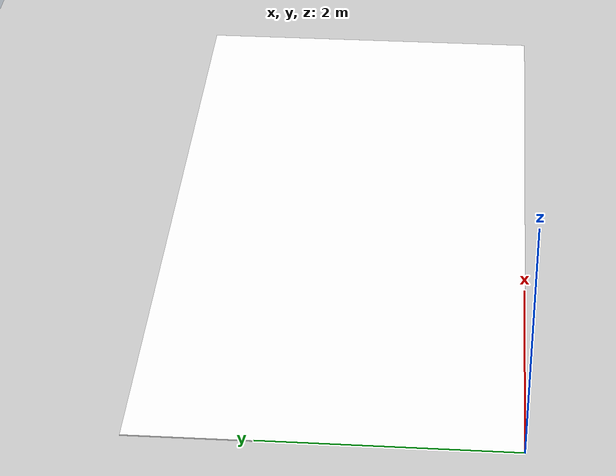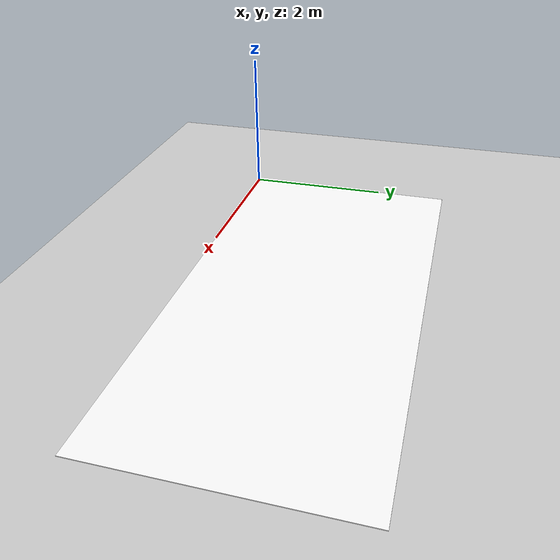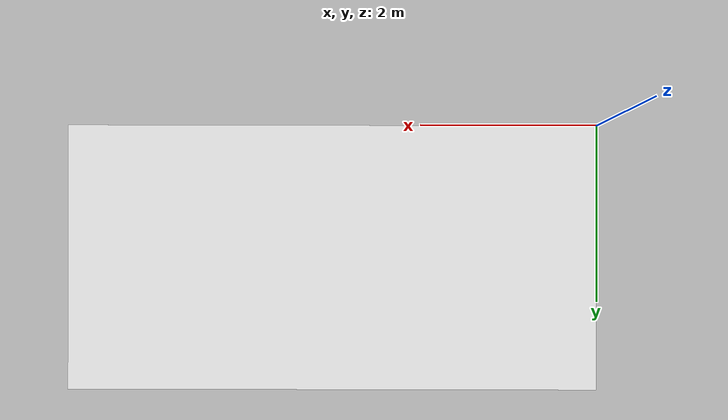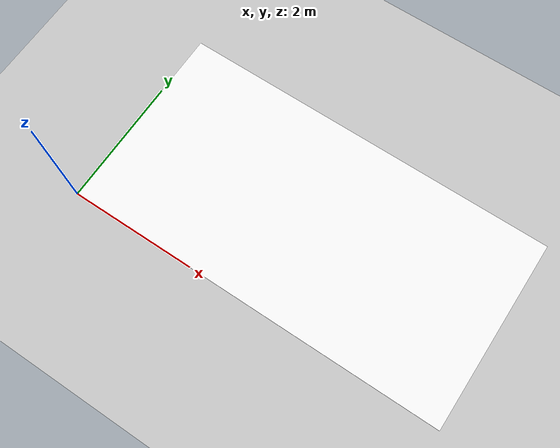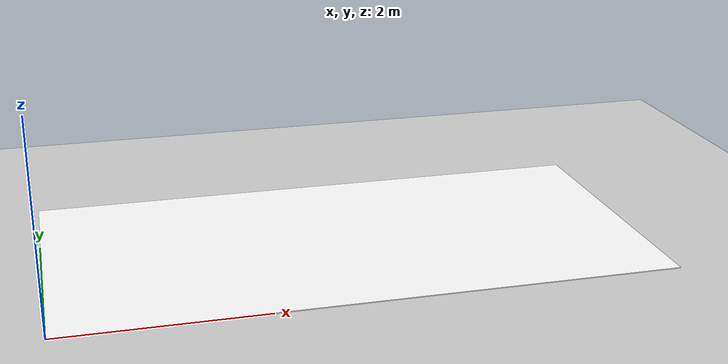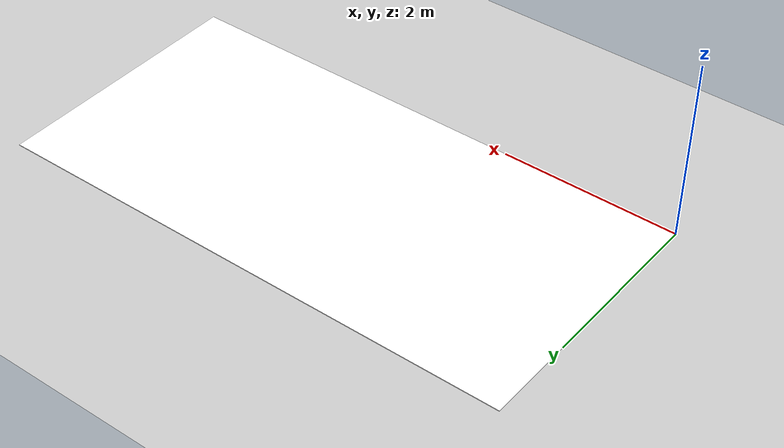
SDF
<?xml version="1.0" ?>
<sdf version="1.6">
  <world name="pathfinding_table">
    <include>
      <uri>model://ground_plane</uri>
    </include>
    <include>
      <uri>model://sun</uri>
    </include>
    <model name="table_floor">
      <static>true</static>
      <link name="link">
        <collision name="collision">
          <geometry>
            <box>
              <size>6 3 0.01</size>
            </box>
          </geometry>
        </collision>
        <visual name="visual">
          <geometry>
            <box>
              <size>6 3 0.01</size>
            </box>
          </geometry>
          <material>
            <ambient>1 1 1 1</ambient>
            <diffuse>1 1 1 1</diffuse>
          </material>
        </visual>
      </link>
      <pose>3 1.5 0 0 0 0</pose>
    </model>
    <physics type="ode">
      <real_time_update_rate>1000.0</real_time_update_rate>
      <max_step_size>0.001</max_step_size>
      <real_time_factor>1</real_time_factor>
    </physics>
  </world>
</sdf>
